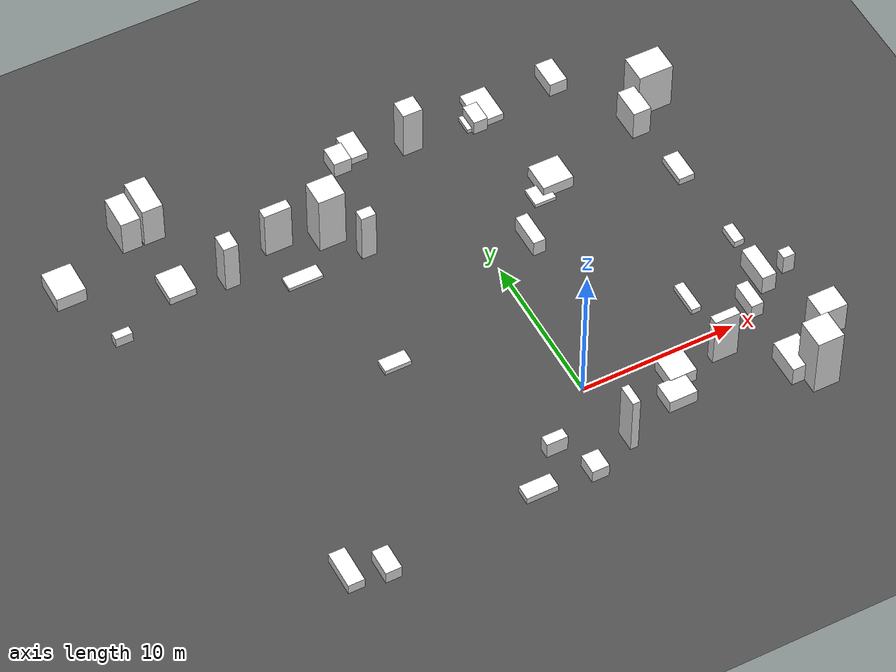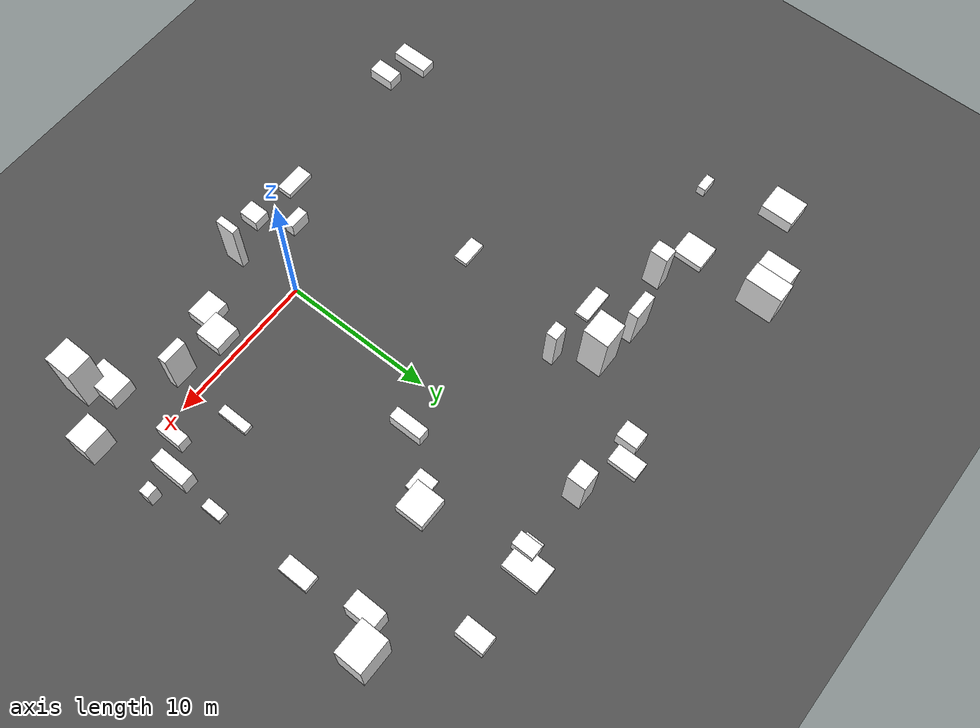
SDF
<sdf version="1.6">
 <world name="mirror_edge_world">
  <model name="ground_plane">
   <static>true</static>
   <link name="link">
    <collision name="collision">
     <geometry><plane><normal>0 0 1</normal><size>100 100</size></plane></geometry>
    </collision>
    <visual name="visual">
     <geometry><plane><normal>0 0 1</normal><size>100 100</size></plane></geometry>
     <material>
      <ambient>0.3 0.3 0.3 1</ambient>
      <diffuse>0.3 0.3 0.3 1</diffuse>
      <specular>0.5 0.5 0.5 1</specular>
      <emissive>0 0 0 1</emissive>
     </material>
    </visual>
   </link>
  </model>
  <model name="block_3_67">
   <static>true</static>
   <link name="link">
    <pose>4.098920634151625 20.906884910798617 0.5037334811662708 0 0 0</pose>
    <collision name="collision">
     <geometry><box><size>0.9382666399772972 1.4621086548240207 1.0074669623325416</size></box></geometry>
    </collision>
    <visual name="visual">
     <geometry><box><size>0.9382666399772972 1.4621086548240207 1.0074669623325416</size></box></geometry>
     <material>
      <ambient>1 1 1 1</ambient>
      <diffuse>1 1 1 1</diffuse>
      <specular>0.9 0.9 0.9 1</specular>
      <emissive>0.05 0.05 0.05 1</emissive>
     </material>
    </visual>
   </link>
  </model>
  <model name="block_4_0">
   <static>true</static>
   <link name="link">
    <pose>-0.291527567740701 21.232677924342227 1.7825481258970677 0 0 0</pose>
    <visual name="visual">
     <geometry><box><size>1.3035352727284595 1.23304141795613 3.5650962517941354</size></box></geometry>
     <material>
      <ambient>1 1 1 1</ambient>
      <diffuse>1 1 1 1</diffuse>
      <specular>0.9 0.9 0.9 1</specular>
      <emissive>0.05 0.05 0.05 1</emissive>
     </material>
    </visual>
   </link>
  </model>
  <model name="block_4_1">
   <static>true</static>
   <link name="link">
    <pose>11.680179086547675 -4.216382206495198 0.6900238753579493 0 0 0</pose>
    <visual name="visual">
     <geometry><box><size>1.6385386221292662 2.2597123348339396 1.3800477507158986</size></box></geometry>
     <material>
      <ambient>1 1 1 1</ambient>
      <diffuse>1 1 1 1</diffuse>
      <specular>0.9 0.9 0.9 1</specular>
      <emissive>0.05 0.05 0.05 1</emissive>
     </material>
    </visual>
   </link>
  </model>
  <model name="block_4_2">
   <static>true</static>
   <link name="link">
    <pose>-18.53510789284232 22.680122606924186 1.2813376006154251 0 0 0</pose>
    <visual name="visual">
     <geometry><box><size>1.2591971974794816 2.2617674012606797 2.5626752012308502</size></box></geometry>
     <material>
      <ambient>1 1 1 1</ambient>
      <diffuse>1 1 1 1</diffuse>
      <specular>0.9 0.9 0.9 1</specular>
      <emissive>0.05 0.05 0.05 1</emissive>
     </material>
    </visual>
   </link>
  </model>
  <model name="block_4_3">
   <static>true</static>
   <link name="link">
    <pose>-8.747303003452867 6.687648181367979 0.16777394951465974 0 0 0</pose>
    <collision name="collision">
     <geometry><box><size>1.7256344558709165 0.9324349077428391 0.3355478990293195</size></box></geometry>
    </collision>
    <visual name="visual">
     <geometry><box><size>1.7256344558709165 0.9324349077428391 0.3355478990293195</size></box></geometry>
     <material>
      <ambient>1 1 1 1</ambient>
      <diffuse>1 1 1 1</diffuse>
      <specular>0.9 0.9 0.9 1</specular>
      <emissive>0.05 0.05 0.05 1</emissive>
     </material>
    </visual>
   </link>
  </model>
  <model name="block_4_4">
   <static>true</static>
   <link name="link">
    <pose>-23.470459658061408 20.449544781769223 0.5193113298767471 0 0 0</pose>
    <visual name="visual">
     <geometry><box><size>1.8936784975008736 2.203997251660374 1.0386226597534942</size></box></geometry>
     <material>
      <ambient>1 1 1 1</ambient>
      <diffuse>1 1 1 1</diffuse>
      <specular>0.9 0.9 0.9 1</specular>
      <emissive>0.05 0.05 0.05 1</emissive>
     </material>
    </visual>
   </link>
  </model>
  <model name="block_4_6">
   <static>true</static>
   <link name="link">
    <pose>5.93850341324006 14.729190646428417 0.4366589772857981 0 0 0</pose>
    <collision name="collision">
     <geometry><box><size>2.0382463085094926 1.951429313062743 0.8733179545715962</size></box></geometry>
    </collision>
    <visual name="visual">
     <geometry><box><size>2.0382463085094926 1.951429313062743 0.8733179545715962</size></box></geometry>
     <material>
      <ambient>1 1 1 1</ambient>
      <diffuse>1 1 1 1</diffuse>
      <specular>0.9 0.9 0.9 1</specular>
      <emissive>0.05 0.05 0.05 1</emissive>
     </material>
    </visual>
   </link>
  </model>
  <model name="block_4_11">
   <static>true</static>
   <link name="link">
    <pose>5.285045801057571 -1.558105572246677 0.48362431581206083 0 0 0</pose>
    <collision name="collision">
     <geometry><box><size>1.7516041435572645 1.765951833253634 0.9672486316241217</size></box></geometry>
    </collision>
    <visual name="visual">
     <geometry><box><size>1.7516041435572645 1.765951833253634 0.9672486316241217</size></box></geometry>
     <material>
      <ambient>1 1 1 1</ambient>
      <diffuse>1 1 1 1</diffuse>
      <specular>0.9 0.9 0.9 1</specular>
      <emissive>0.05 0.05 0.05 1</emissive>
     </material>
    </visual>
   </link>
  </model>
  <model name="block_4_14">
   <static>true</static>
   <link name="link">
    <pose>9.762922595515562 21.69061160376417 0.5030120836426473 0 0 0</pose>
    <collision name="collision">
     <geometry><box><size>1.1826217729918251 1.9189205005260705 1.0060241672852945</size></box></geometry>
    </collision>
    <visual name="visual">
     <geometry><box><size>1.1826217729918251 1.9189205005260705 1.0060241672852945</size></box></geometry>
     <material>
      <ambient>1 1 1 1</ambient>
      <diffuse>1 1 1 1</diffuse>
      <specular>0.9 0.9 0.9 1</specular>
      <emissive>0.05 0.05 0.05 1</emissive>
     </material>
    </visual>
   </link>
  </model>
  <model name="block_4_15">
   <static>true</static>
   <link name="link">
    <pose>11.642856139996702 0.9099835659514728 0.5445520707446849 0 0 0</pose>
    <visual name="visual">
     <geometry><box><size>0.8100555499704454 1.8488022715447434 1.0891041414893698</size></box></geometry>
     <material>
      <ambient>1 1 1 1</ambient>
      <diffuse>1 1 1 1</diffuse>
      <specular>0.9 0.9 0.9 1</specular>
      <emissive>0.05 0.05 0.05 1</emissive>
     </material>
    </visual>
   </link>
  </model>
  <model name="block_4_16">
   <static>true</static>
   <link name="link">
    <pose>4.947664694223086 21.65773564333228 0.2606018858741667 0 0 0</pose>
    <collision name="collision">
     <geometry><box><size>1.7164012757897016 2.4711021593285043 0.5212037717483334</size></box></geometry>
    </collision>
    <visual name="visual">
     <geometry><box><size>1.7164012757897016 2.4711021593285043 0.5212037717483334</size></box></geometry>
     <material>
      <ambient>1 1 1 1</ambient>
      <diffuse>1 1 1 1</diffuse>
      <specular>0.9 0.9 0.9 1</specular>
      <emissive>0.05 0.05 0.05 1</emissive>
     </material>
    </visual>
   </link>
  </model>
  <model name="block_4_17">
   <static>true</static>
   <link name="link">
    <pose>12.556514700956093 -5.448036320177266 2.162986059818586 0 0 0</pose>
    <visual name="visual">
     <geometry><box><size>1.713623032307893 1.873895508713006 4.325972119637172</size></box></geometry>
     <material>
      <ambient>1 1 1 1</ambient>
      <diffuse>1 1 1 1</diffuse>
      <specular>0.9 0.9 0.9 1</specular>
      <emissive>0.05 0.05 0.05 1</emissive>
     </material>
    </visual>
   </link>
  </model>
  <model name="block_4_18">
   <static>true</static>
   <link name="link">
    <pose>-17.94751026313538 -5.273301537920428 0.3602964760355253 0 0 0</pose>
    <collision name="collision">
     <geometry><box><size>1.0420914125676484 2.47115020778267 0.7205929520710506</size></box></geometry>
    </collision>
    <visual name="visual">
     <geometry><box><size>1.0420914125676484 2.47115020778267 0.7205929520710506</size></box></geometry>
     <material>
      <ambient>1 1 1 1</ambient>
      <diffuse>1 1 1 1</diffuse>
      <specular>0.9 0.9 0.9 1</specular>
      <emissive>0.05 0.05 0.05 1</emissive>
     </material>
    </visual>
   </link>
  </model>
  <model name="block_4_19">
   <static>true</static>
   <link name="link">
    <pose>-10.862604516383145 17.817834833384225 1.7454139915007068 0 0 0</pose>
    <visual name="visual">
     <geometry><box><size>1.774353533040465 0.673313042894016 3.4908279830014135</size></box></geometry>
     <material>
      <ambient>1 1 1 1</ambient>
      <diffuse>1 1 1 1</diffuse>
      <specular>0.9 0.9 0.9 1</specular>
      <emissive>0.05 0.05 0.05 1</emissive>
     </material>
    </visual>
   </link>
  </model>
  <model name="block_4_28">
   <static>true</static>
   <link name="link">
    <pose>-7.875948151737553 17.153393381750003 2.173977523735158 0 0 0</pose>
    <visual name="visual">
     <geometry><box><size>1.7376731739875746 1.682172478890383 4.347955047470316</size></box></geometry>
     <material>
      <ambient>1 1 1 1</ambient>
      <diffuse>1 1 1 1</diffuse>
      <specular>0.9 0.9 0.9 1</specular>
      <emissive>0.05 0.05 0.05 1</emissive>
     </material>
    </visual>
   </link>
  </model>
  <model name="block_4_31">
   <static>true</static>
   <link name="link">
    <pose>13.155686884720886 11.889430839743973 0.249694895117209 0 0 0</pose>
    <collision name="collision">
     <geometry><box><size>1.0572874037888442 2.0361703424181217 0.499389790234418</size></box></geometry>
    </collision>
    <visual name="visual">
     <geometry><box><size>1.0572874037888442 2.0361703424181217 0.499389790234418</size></box></geometry>
     <material>
      <ambient>1 1 1 1</ambient>
      <diffuse>1 1 1 1</diffuse>
      <specular>0.9 0.9 0.9 1</specular>
      <emissive>0.05 0.05 0.05 1</emissive>
     </material>
    </visual>
   </link>
  </model>
  <model name="block_4_32">
   <static>true</static>
   <link name="link">
    <pose>-15.77907864940025 -5.967561538892318 0.4414089684920487 0 0 0</pose>
    <collision name="collision">
     <geometry><box><size>1.0322072069946817 1.7354423614975298 0.8828179369840974</size></box></geometry>
    </collision>
    <visual name="visual">
     <geometry><box><size>1.0322072069946817 1.7354423614975298 0.8828179369840974</size></box></geometry>
     <material>
      <ambient>1 1 1 1</ambient>
      <diffuse>1 1 1 1</diffuse>
      <specular>0.9 0.9 0.9 1</specular>
      <emissive>0.05 0.05 0.05 1</emissive>
     </material>
    </visual>
   </link>
  </model>
  <model name="block_4_34">
   <static>true</static>
   <link name="link">
    <pose>-17.088772870346666 22.794920171694148 1.483645541375808 0 0 0</pose>
    <visual name="visual">
     <geometry><box><size>1.349471727773 2.498947453598647 2.967291082751616</size></box></geometry>
     <material>
      <ambient>1 1 1 1</ambient>
      <diffuse>1 1 1 1</diffuse>
      <specular>0.9 0.9 0.9 1</specular>
      <emissive>0.05 0.05 0.05 1</emissive>
     </material>
    </visual>
   </link>
  </model>
  <model name="block_4_35">
   <static>true</static>
   <link name="link">
    <pose>-3.5155879760859783 22.434143353619426 0.2609566471580142 0 0 0</pose>
    <collision name="collision">
     <geometry><box><size>1.1868009521414784 1.9479535447823195 0.5219132943160284</size></box></geometry>
    </collision>
    <visual name="visual">
     <geometry><box><size>1.1868009521414784 1.9479535447823195 0.5219132943160284</size></box></geometry>
     <material>
      <ambient>1 1 1 1</ambient>
      <diffuse>1 1 1 1</diffuse>
      <specular>0.9 0.9 0.9 1</specular>
      <emissive>0.05 0.05 0.05 1</emissive>
     </material>
    </visual>
   </link>
  </model>
  <model name="block_4_40">
   <static>true</static>
   <link name="link">
    <pose>-14.516212261969633 16.803710843021094 1.8243831338866816 0 0 0</pose>
    <visual name="visual">
     <geometry><box><size>0.9544640741066472 1.1833361288366142 3.648766267773363</size></box></geometry>
     <material>
      <ambient>1 1 1 1</ambient>
      <diffuse>1 1 1 1</diffuse>
      <specular>0.9 0.9 0.9 1</specular>
      <emissive>0.05 0.05 0.05 1</emissive>
     </material>
    </visual>
   </link>
  </model>
  <model name="block_4_41">
   <static>true</static>
   <link name="link">
    <pose>8.644642225719892 2.925991955470166 0.1976473025892554 0 0 0</pose>
    <collision name="collision">
     <geometry><box><size>0.6402273969920218 2.1019078331079686 0.3952946051785108</size></box></geometry>
    </collision>
    <visual name="visual">
     <geometry><box><size>0.6402273969920218 2.1019078331079686 0.3952946051785108</size></box></geometry>
     <material>
      <ambient>1 1 1 1</ambient>
      <diffuse>1 1 1 1</diffuse>
      <specular>0.9 0.9 0.9 1</specular>
      <emissive>0.05 0.05 0.05 1</emissive>
     </material>
    </visual>
   </link>
  </model>
  <model name="block_4_43">
   <static>true</static>
   <link name="link">
    <pose>-5.731274790304742 -5.206019517767787 0.2362357663774673 0 0 0</pose>
    <collision name="collision">
     <geometry><box><size>2.024302580743387 1.0070454918157574 0.4724715327549346</size></box></geometry>
    </collision>
    <visual name="visual">
     <geometry><box><size>2.024302580743387 1.0070454918157574 0.4724715327549346</size></box></geometry>
     <material>
      <ambient>1 1 1 1</ambient>
      <diffuse>1 1 1 1</diffuse>
      <specular>0.9 0.9 0.9 1</specular>
      <emissive>0.05 0.05 0.05 1</emissive>
     </material>
    </visual>
   </link>
  </model>
  <model name="block_4_45">
   <static>true</static>
   <link name="link">
    <pose>14.28493678404179 17.714485902177287 1.7002101089507897 0 0 0</pose>
    <visual name="visual">
     <geometry><box><size>2.2861793210954753 1.835944882662739 3.4004202179015794</size></box></geometry>
     <material>
      <ambient>1 1 1 1</ambient>
      <diffuse>1 1 1 1</diffuse>
      <specular>0.9 0.9 0.9 1</specular>
      <emissive>0.05 0.05 0.05 1</emissive>
     </material>
    </visual>
   </link>
  </model>
  <model name="block_4_47">
   <static>true</static>
   <link name="link">
    <pose>13.421392109581653 5.790841023047155 0.2448580712134742 0 0 0</pose>
    <collision name="collision">
     <geometry><box><size>0.6774962278294994 1.3726417181818902 0.4897161424269484</size></box></geometry>
    </collision>
    <visual name="visual">
     <geometry><box><size>0.6774962278294994 1.3726417181818902 0.4897161424269484</size></box></geometry>
     <material>
      <ambient>1 1 1 1</ambient>
      <diffuse>1 1 1 1</diffuse>
      <specular>0.9 0.9 0.9 1</specular>
      <emissive>0.05 0.05 0.05 1</emissive>
     </material>
    </visual>
   </link>
  </model>
  <model name="block_4_48">
   <static>true</static>
   <link name="link">
    <pose>-21.971663202865596 15.606052965564263 0.3611313930941176 0 0 0</pose>
    <collision name="collision">
     <geometry><box><size>1.1084586695374854 0.5698746547707003 0.7222627861882353</size></box></geometry>
    </collision>
    <visual name="visual">
     <geometry><box><size>1.1084586695374854 0.5698746547707003 0.7222627861882353</size></box></geometry>
     <material>
      <ambient>1 1 1 1</ambient>
      <diffuse>1 1 1 1</diffuse>
      <specular>0.9 0.9 0.9 1</specular>
      <emissive>0.05 0.05 0.05 1</emissive>
     </material>
    </visual>
   </link>
  </model>
  <model name="block_4_49">
   <static>true</static>
   <link name="link">
    <pose>12.578805710799735 16.41141826158789 1.0821547051511435 0 0 0</pose>
    <visual name="visual">
     <geometry><box><size>1.1865828919539447 2.033663054791502 2.164309410302287</size></box></geometry>
     <material>
      <ambient>1 1 1 1</ambient>
      <diffuse>1 1 1 1</diffuse>
      <specular>0.9 0.9 0.9 1</specular>
      <emissive>0.05 0.05 0.05 1</emissive>
     </material>
    </visual>
   </link>
  </model>
  <model name="block_4_52">
   <static>true</static>
   <link name="link">
    <pose>-2.1888146811758915 -5.421950137399131 0.4663072228591282 0 0 0</pose>
    <collision name="collision">
     <geometry><box><size>1.1043630425318793 1.3310345464808775 0.9326144457182564</size></box></geometry>
    </collision>
    <visual name="visual">
     <geometry><box><size>1.1043630425318793 1.3310345464808775 0.9326144457182564</size></box></geometry>
     <material>
      <ambient>1 1 1 1</ambient>
      <diffuse>1 1 1 1</diffuse>
      <specular>0.9 0.9 0.9 1</specular>
      <emissive>0.05 0.05 0.05 1</emissive>
     </material>
    </visual>
   </link>
  </model>
  <model name="block_4_59">
   <static>true</static>
   <link name="link">
    <pose>13.197165387499581 2.5255914405199738 0.7155654690787212 0 0 0</pose>
    <visual name="visual">
     <geometry><box><size>0.9341761299674256 2.445464575176108 1.4311309381574424</size></box></geometry>
     <material>
      <ambient>1 1 1 1</ambient>
      <diffuse>1 1 1 1</diffuse>
      <specular>0.9 0.9 0.9 1</specular>
      <emissive>0.05 0.05 0.05 1</emissive>
     </material>
    </visual>
   </link>
  </model>
  <model name="block_4_60">
   <static>true</static>
   <link name="link">
    <pose>14.992507008711016 2.406915473785573 0.7162389551186186 0 0 0</pose>
    <visual name="visual">
     <geometry><box><size>0.7870668770181284 0.6821671395228415 1.4324779102372371</size></box></geometry>
     <material>
      <ambient>1 1 1 1</ambient>
      <diffuse>1 1 1 1</diffuse>
      <specular>0.9 0.9 0.9 1</specular>
      <emissive>0.05 0.05 0.05 1</emissive>
     </material>
    </visual>
   </link>
  </model>
  <model name="block_4_61">
   <static>true</static>
   <link name="link">
    <pose>4.843167324557335 13.973134461425992 0.13349380596877192 0 0 0</pose>
    <collision name="collision">
     <geometry><box><size>1.4206168373577648 1.3358988241734786 0.26698761193754383</size></box></geometry>
    </collision>
    <visual name="visual">
     <geometry><box><size>1.4206168373577648 1.3358988241734786 0.26698761193754383</size></box></geometry>
     <material>
      <ambient>1 1 1 1</ambient>
      <diffuse>1 1 1 1</diffuse>
      <specular>0.9 0.9 0.9 1</specular>
      <emissive>0.05 0.05 0.05 1</emissive>
     </material>
    </visual>
   </link>
  </model>
  <model name="block_4_62">
   <static>true</static>
   <link name="link">
    <pose>0.5709337383346629 -4.3889480428198535 2.112117913828345 0 0 0</pose>
    <visual name="visual">
     <geometry><box><size>0.5054569381156002 1.363626390048481 4.22423582765669</size></box></geometry>
     <material>
      <ambient>1 1 1 1</ambient>
      <diffuse>1 1 1 1</diffuse>
      <specular>0.9 0.9 0.9 1</specular>
      <emissive>0.05 0.05 0.05 1</emissive>
     </material>
    </visual>
   </link>
  </model>
  <model name="block_4_64">
   <static>true</static>
   <link name="link">
    <pose>8.436955780600513 -1.5125688910108988 1.828887368470525 0 0 0</pose>
    <visual name="visual">
     <geometry><box><size>1.6453438894624943 0.5841519957583625 3.65777473694105</size></box></geometry>
     <material>
      <ambient>1 1 1 1</ambient>
      <diffuse>1 1 1 1</diffuse>
      <specular>0.9 0.9 0.9 1</specular>
      <emissive>0.05 0.05 0.05 1</emissive>
     </material>
    </visual>
   </link>
  </model>
  <model name="block_4_65">
   <static>true</static>
   <link name="link">
    <pose>-6.340080908639479 14.95054146730714 1.8102693688913323 0 0 0</pose>
    <visual name="visual">
     <geometry><box><size>0.9723608011159992 0.7317160179356885 3.6205387377826646</size></box></geometry>
     <material>
      <ambient>1 1 1 1</ambient>
      <diffuse>1 1 1 1</diffuse>
      <specular>0.9 0.9 0.9 1</specular>
      <emissive>0.05 0.05 0.05 1</emissive>
     </material>
    </visual>
   </link>
  </model>
  <model name="block_4_67">
   <static>true</static>
   <link name="link">
    <pose>4.512007192950183 -3.078681087818909 0.4691322297882079 0 0 0</pose>
    <collision name="collision">
     <geometry><box><size>1.8436627656551714 1.4853936901960754 0.9382644595764158</size></box></geometry>
    </collision>
    <visual name="visual">
     <geometry><box><size>1.8436627656551714 1.4853936901960754 0.9382644595764158</size></box></geometry>
     <material>
      <ambient>1 1 1 1</ambient>
      <diffuse>1 1 1 1</diffuse>
      <specular>0.9 0.9 0.9 1</specular>
      <emissive>0.05 0.05 0.05 1</emissive>
     </material>
    </visual>
   </link>
  </model>
  <model name="block_5_0">
   <static>true</static>
   <link name="link">
    <pose>-4.818592863355384 21.751990312580322 0.5574306504976985 0 0 0</pose>
    <collision name="collision">
     <geometry><box><size>1.163143421364313 1.417232800706699 1.114861300995397</size></box></geometry>
    </collision>
    <visual name="visual">
     <geometry><box><size>1.163143421364313 1.417232800706699 1.114861300995397</size></box></geometry>
     <material>
      <ambient>1 1 1 1</ambient>
      <diffuse>1 1 1 1</diffuse>
      <specular>0.9 0.9 0.9 1</specular>
      <emissive>0.05 0.05 0.05 1</emissive>
     </material>
    </visual>
   </link>
  </model>
  <model name="block_5_1">
   <static>true</static>
   <link name="link">
    <pose>-3.5025157500818658 -3.014998779959516 0.5793322474180029 0 0 0</pose>
    <collision name="collision">
     <geometry><box><size>1.3675193135949046 0.6749766162699711 1.1586644948360059</size></box></geometry>
    </collision>
    <visual name="visual">
     <geometry><box><size>1.3675193135949046 0.6749766162699711 1.1586644948360059</size></box></geometry>
     <material>
      <ambient>1 1 1 1</ambient>
      <diffuse>1 1 1 1</diffuse>
      <specular>0.9 0.9 0.9 1</specular>
      <emissive>0.05 0.05 0.05 1</emissive>
     </material>
    </visual>
   </link>
  </model>
  <model name="block_5_5">
   <static>true</static>
   <link name="link">
    <pose>2.663053427998701 11.231404312841239 0.5603359915325488 0 0 0</pose>
    <collision name="collision">
     <geometry><box><size>0.8007624676264715 2.2665020420568007 1.1206719830650975</size></box></geometry>
    </collision>
    <visual name="visual">
     <geometry><box><size>0.8007624676264715 2.2665020420568007 1.1206719830650975</size></box></geometry>
     <material>
      <ambient>1 1 1 1</ambient>
      <diffuse>1 1 1 1</diffuse>
      <specular>0.9 0.9 0.9 1</specular>
      <emissive>0.05 0.05 0.05 1</emissive>
     </material>
    </visual>
   </link>
  </model>
  <model name="block_5_6">
   <static>true</static>
   <link name="link">
    <pose>14.863937289861873 -2.3768599062654765 1.1044042837692822 0 0 0</pose>
    <visual name="visual">
     <geometry><box><size>1.8046147722670147 1.5643961939553321 2.2088085675385645</size></box></geometry>
     <material>
      <ambient>1 1 1 1</ambient>
      <diffuse>1 1 1 1</diffuse>
      <specular>0.9 0.9 0.9 1</specular>
      <emissive>0.05 0.05 0.05 1</emissive>
     </material>
    </visual>
   </link>
  </model>
  <model name="block_5_7">
   <static>true</static>
   <link name="link">
    <pose>-17.519428639669147 17.74140415609585 0.28811167939677035 0 0 0</pose>
    <collision name="collision">
     <geometry><box><size>1.7286963532995991 2.0273452702192625 0.5762233587935407</size></box></geometry>
    </collision>
    <visual name="visual">
     <geometry><box><size>1.7286963532995991 2.0273452702192625 0.5762233587935407</size></box></geometry>
     <material>
      <ambient>1 1 1 1</ambient>
      <diffuse>1 1 1 1</diffuse>
      <specular>0.9 0.9 0.9 1</specular>
      <emissive>0.05 0.05 0.05 1</emissive>
     </material>
    </visual>
   </link>
  </model>
  <model name="block_5_12">
   <static>true</static>
   <link name="link">
    <pose>-10.628298567464508 14.85755641538664 0.12551190608009066 0 0 0</pose>
    <collision name="collision">
     <geometry><box><size>2.2562827323824144 0.9575205316105919 0.2510238121601813</size></box></geometry>
    </collision>
    <visual name="visual">
     <geometry><box><size>2.2562827323824144 0.9575205316105919 0.2510238121601813</size></box></geometry>
     <material>
      <ambient>1 1 1 1</ambient>
      <diffuse>1 1 1 1</diffuse>
      <specular>0.9 0.9 0.9 1</specular>
      <emissive>0.05 0.05 0.05 1</emissive>
     </material>
    </visual>
   </link>
  </model>
  <model name="block_5_13">
   <static>true</static>
   <link name="link">
    <pose>3.838981537372007 20.998558180083474 0.15050726476713566 0 0 0</pose>
    <collision name="collision">
     <geometry><box><size>1.0493211041476551 1.1766096401472044 0.3010145295342713</size></box></geometry>
    </collision>
    <visual name="visual">
     <geometry><box><size>1.0493211041476551 1.1766096401472044 0.3010145295342713</size></box></geometry>
     <material>
      <ambient>1 1 1 1</ambient>
      <diffuse>1 1 1 1</diffuse>
      <specular>0.9 0.9 0.9 1</specular>
      <emissive>0.05 0.05 0.05 1</emissive>
     </material>
    </visual>
   </link>
  </model>
 </world>
</sdf>
